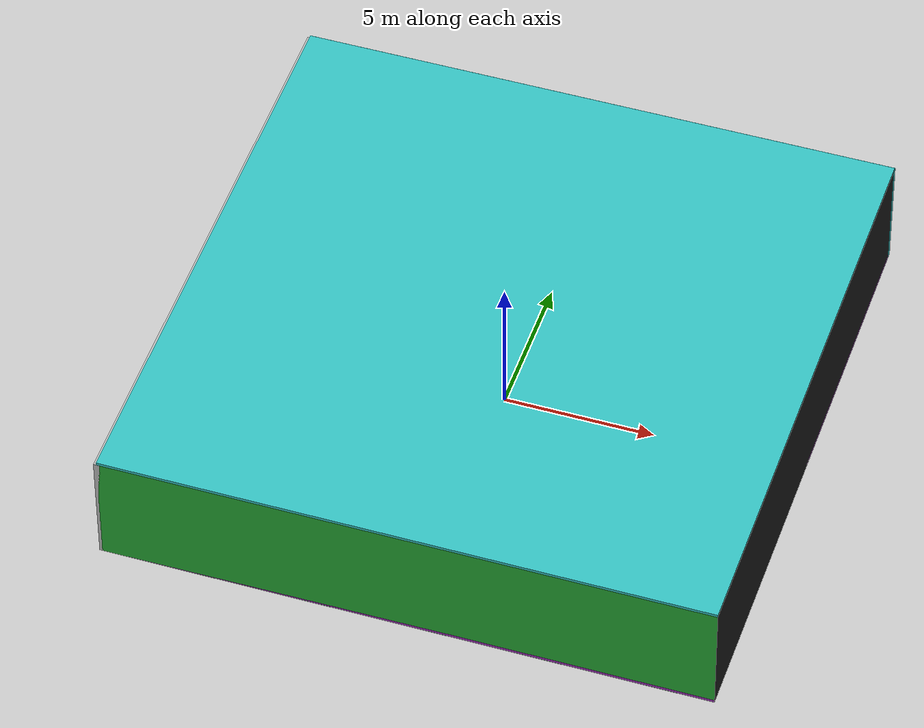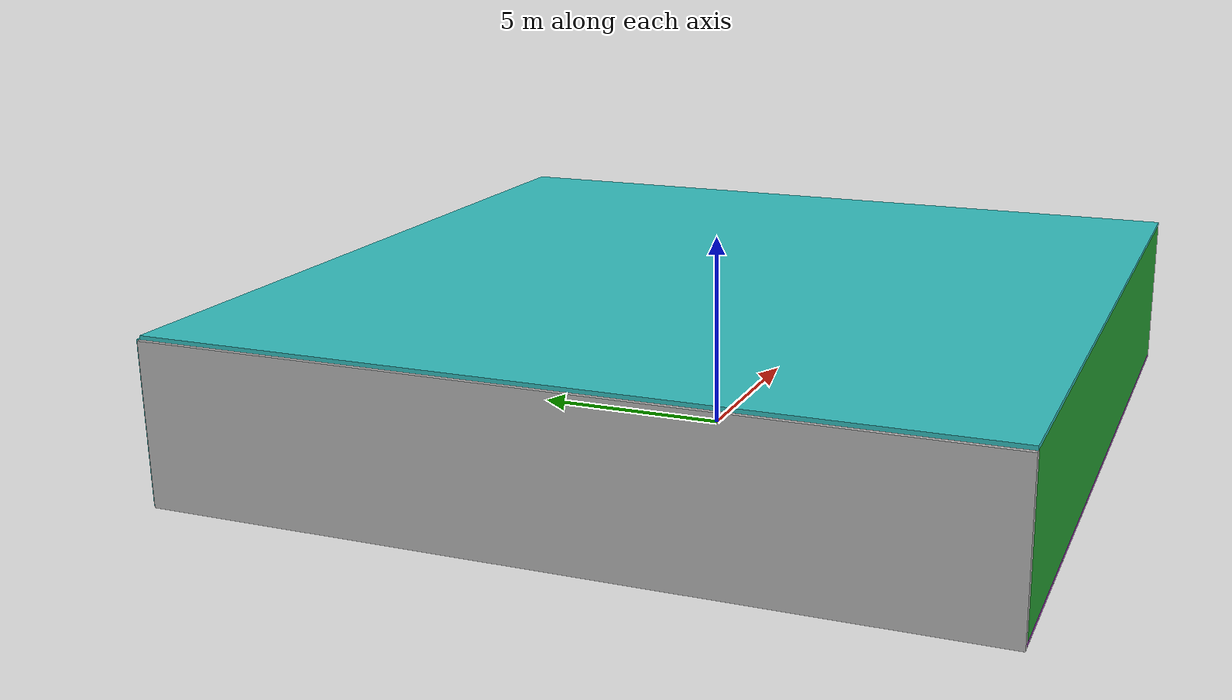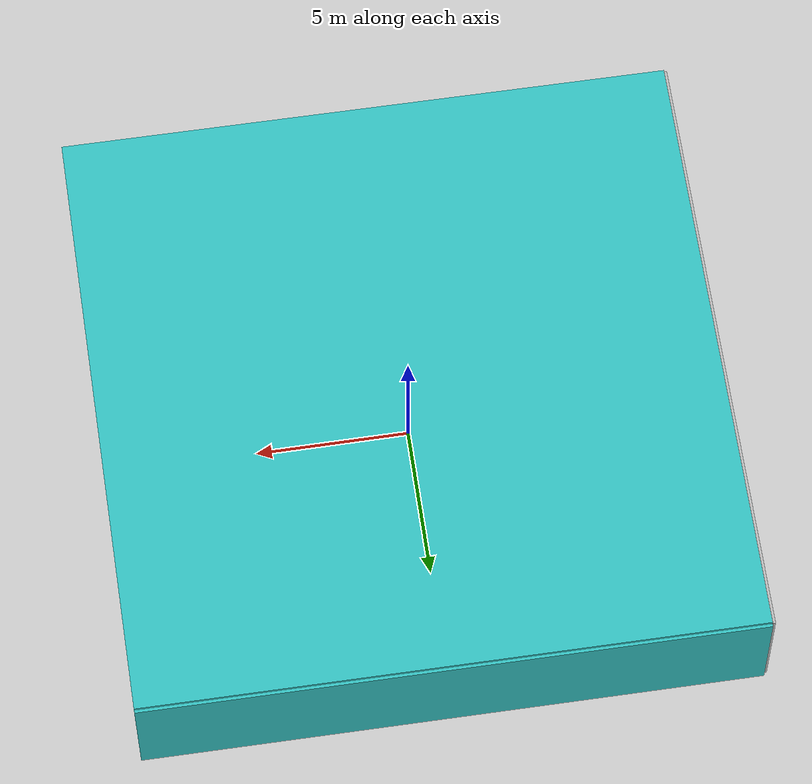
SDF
<sdf version="1.4">
 <world name="default">
  <physics type="ode">
   <max_step_size>0.001</max_step_size>
   <real_time_factor>1</real_time_factor>
   <real_time_update_rate>1000</real_time_update_rate>
   <gravity>0 0 -9.8</gravity>
  </physics>
  <scene><ambient>0.4 0.4 0.4 1</ambient><background>0.7 0.7 0.7 1</background><shadows>1</shadows></scene>
  <model name="Surrounding">
   <static>1</static>
   <link name="Ceiling">
    <collision name="Ceiling_Collision"><geometry><box><size>20 20 0.1</size></box></geometry></collision>
    <visual name="Ceiling_Visual">
     <geometry><box><size>20 20 0.1</size></box></geometry>
     <material>
      <script>
       <uri>file://media/materials/scripts/gazebo.material</uri>
       <name>Gazebo/TurquoiseGlowOutline</name>
      </script>
     </material>
    </visual>
    <pose>0 0 4.05 0 0 0</pose>
   </link>
   <link name="Wall_South">
    <collision name="Wall_South_Collision">
     <geometry><box><size>20 0 4</size></box></geometry>
     <pose>0 0 2 0 -0 0</pose>
    </collision>
    <visual name="Wall_South_Visual">
     <pose>0 0 2 0 -0 0</pose>
     <geometry><box><size>20 0 4</size></box></geometry>
     <material>
      <script><uri>file://media/materials/scripts/gazebo.material</uri><name>Gazebo/GreenGlow</name></script>
     </material>
    </visual>
    <velocity_decay><linear>0</linear><angular>0</angular></velocity_decay>
    <pose>0 -10 0 0 -0 0</pose>
   </link>
   <link name="Wall_East">
    <collision name="Wall_21_Collision">
     <geometry><box><size>20 0 4</size></box></geometry>
     <pose>0 0 2 0 -0 0</pose>
    </collision>
    <visual name="Wall_21_Visual">
     <pose>0 0 2 0 -0 0</pose>
     <geometry><box><size>20 0 4</size></box></geometry>
     <material>
      <script><uri>file://media/materials/scripts/gazebo.material</uri><name>Gazebo/FlatBlack</name></script>
     </material>
    </visual>
    <velocity_decay><linear>0</linear><angular>0</angular></velocity_decay>
    <pose>10 0 0 0 -0 1.5708</pose>
   </link>
   <link name="Wall_North">
    <collision name="Wall_22_Collision">
     <geometry><box><size>20 0.2 4</size></box></geometry>
     <pose>0 0 2 0 -0 0</pose>
    </collision>
    <visual name="Wall_22_Visual">
     <pose>0 0 2 0 -0 0</pose>
     <geometry><box><size>20 0.2 4</size></box></geometry>
     <material>
      <script><uri>file://media/materials/scripts/gazebo.material</uri><name>Gazebo/Turquoise</name></script>
     </material>
    </visual>
    <velocity_decay><linear>0</linear><angular>0</angular></velocity_decay>
    <pose>0 10 0 0 -0 0</pose>
   </link>
   <link name="Wall_West">
    <collision name="Wall_23_Collision">
     <geometry><box><size>20 0.2 4</size></box></geometry>
     <pose>0 0 2 0 -0 0</pose>
    </collision>
    <visual name="Wall_23_Visual">
     <pose>0 0 2 0 -0 0</pose>
     <geometry><box><size>20 0.2 4</size></box></geometry>
     <material>
      <script><uri>file://media/materials/scripts/gazebo.material</uri><name>Gazebo/LightOff</name></script>
     </material>
    </visual>
    <velocity_decay><linear>0</linear><angular>0</angular></velocity_decay>
    <pose>-10 0 0 0 0 -1.5708</pose>
   </link>
   <link name="Ground_link">
    <collision name="collision">
     <pose>0 0 .05 0 -0 0</pose>
     <geometry><box><size>20 20 0.1</size></box></geometry>
    </collision>
    <visual name="visual">
     <pose>0 0 .05 0 -0 0</pose>
     <geometry><box><size>20 20 0.1</size></box></geometry>
     <material>
      <script><uri>file://media/materials/scripts/gazebo.material</uri><name>Gazebo/PurpleGlow</name></script>
     </material>
    </visual>
   </link>
   <static>1</static>
  </model>
  <spherical_coordinates>
   <surface_model>EARTH_WGS84</surface_model>
   <latitude_deg>0</latitude_deg>
   <longitude_deg>0</longitude_deg>
   <elevation>0</elevation>
   <heading_deg>0</heading_deg>
  </spherical_coordinates>
  <light name="lightball_0" type="diffuse">
   <diffuse>0.8 0.8 0.8 1</diffuse>
   <specular>0.2 0.2 0.2 1</specular>
   <attenuation>
    <range>100</range>
    <constant>0.7</constant>
    <linear>0.01</linear>
    <quadratic>0.001</quadratic>
   </attenuation>
   <direction>-0.5 0.1 -0.9</direction>
   <pose>1.90103704013 7.54781885934 1.66482847381 0 0 0</pose>
  </light>
  <light name="lightball_1" type="diffuse">
   <diffuse>0.8 0.8 0.8 1</diffuse>
   <specular>0.2 0.2 0.2 1</specular>
   <attenuation>
    <range>100</range>
    <constant>0.7</constant>
    <linear>0.01</linear>
    <quadratic>0.001</quadratic>
   </attenuation>
   <direction>-0.5 0.1 -0.9</direction>
   <pose>6.87882114827 7.08842347916 3.09734188836 0 0 0</pose>
  </light>
  <light name="lightball_2" type="diffuse">
   <diffuse>0.8 0.8 0.8 1</diffuse>
   <specular>0.2 0.2 0.2 1</specular>
   <attenuation>
    <range>100</range>
    <constant>0.7</constant>
    <linear>0.01</linear>
    <quadratic>0.001</quadratic>
   </attenuation>
   <direction>-0.5 0.1 -0.9</direction>
   <pose>-2.23917130545 4.37658026587 3.50692618773 0 0 0</pose>
  </light>
  <include><uri>model://cabinet</uri><pose>-7.89992698196 8.16791688651 0 0 0 0.86675236528</pose></include>
  <include>
   <uri>model://robocup_3Dsim_goal</uri>
   <pose>-4.78374681102 -3.79383793096 0 0 0 1.09180852898</pose>
  </include>
  <include><uri>model://cabinet</uri><pose>-4.5747576424 4.06404730878 0 0 0 2.9811976818</pose></include>
  <include><uri>model://table</uri><pose>-5.03123110011 8.0151134985 0 0 0 2.29399063451</pose></include>
  <include><uri>model://cabinet</uri><pose>1.01252102729 -3.77194934224 0 0 0 2.3447160449</pose></include>
  <include>
   <uri>model://textured_shapes</uri>
   <pose>1.97011201787 -2.20166088025 0 0 0 0.618370428832</pose>
  </include>
  <include><uri>model://table</uri><pose>3.79063480382 -3.76233593362 0 0 0 1.71317569654</pose></include>
  <include>
   <uri>model://robocup_3Dsim_goal</uri>
   <pose>8.20298486974 -7.45292717792 0 0 0 0.648551966802</pose>
  </include>
  <include>
   <uri>model://robocup_3Dsim_goal</uri>
   <pose>7.10035110802 -4.19771569525 0 0 0 2.64640250139</pose>
  </include>
 </world>
</sdf>

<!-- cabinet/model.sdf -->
<sdf version="1.5">
  <model name="cabinet">
    <static>true</static>
    <link name="cabinet_bottom_plate">
      <inertial>
        <pose>0 0 -1 0 0 0</pose>
        <inertia>
          <ixx>2.050000</ixx>
          <ixy>0</ixy>
          <ixz>0</ixz>
          <iyy>2.050000</iyy>
          <iyz>0</iyz>
          <izz>2.050000</izz>
        </inertia>
        <mass>25.000000</mass>
      </inertial>
      <collision name="cabinet_bottom_plate_geom">
        <pose>0 0 0.010000 0 0 0</pose>
        <geometry>
          <box>
            <size>0.450000 0.450000 0.020000</size>
          </box>
        </geometry>
      </collision>
      <visual name="cabinet_bottom_plate_geom_visual">
        <pose>0 0 0.010000 0 0 0</pose>
        <geometry>
          <box>
            <size>0.450000 0.450000 0.020000</size>
          </box>
        </geometry>
        <material>
          <script>
            <uri>model://media/materials/scripts/gazebo.material</uri>
            <name>Gazebo/Wood</name>
          </script>
        </material>
      </visual>
      <collision name="cabinet_bottom_plate_geom_cabinet_back_plate">
        <pose>0.235000 0 0.510000 0 0 0</pose>
        <geometry>
          <box>
            <size>0.020000 0.450000 1.020000</size>
          </box>
        </geometry>
      </collision>
      <visual name="cabinet_bottom_plate_geom_cabinet_back_plate_visual">
        <pose>0.235000 0 0.510000 0 0 0</pose>
        <geometry>
          <box>
            <size>0.020000 0.450000 1.020000</size>
          </box>
        </geometry>
        <material>
          <script>
            <uri>model://media/materials/scripts/gazebo.material</uri>
            <name>Gazebo/Wood</name>
          </script>
        </material>
      </visual>
      <collision name="cabinet_bottom_plate_geom_cabinet_left_plate">
        <pose>0 0.235000 0.510000 0 0 0</pose>
        <geometry>
          <box>
            <size>0.450000 0.020000 1.020000</size>
          </box>
        </geometry>
      </collision>
      <visual name="cabinet_bottom_plate_geom_cabinet_left_plate_visual">
        <pose>0 0.235000 0.510000 0 0 0</pose>
        <geometry>
          <box>
            <size>0.450000 0.020000 1.020000</size>
          </box>
        </geometry>
        <material>
          <script>
            <uri>model://media/materials/scripts/gazebo.material</uri>
            <name>Gazebo/Wood</name>
          </script>
        </material>
      </visual>
      <collision name="cabinet_bottom_plate_geom_cabinet_middle_plate">
        <pose>0 0 0.510000 0 0 0</pose>
        <geometry>
          <box>
            <size>0.450000 0.450000 0.020000</size>
          </box>
        </geometry>
      </collision>
      <visual name="cabinet_bottom_plate_geom_cabinet_middle_plate_visual">
        <pose>0 0 0.510000 0 0 0</pose>
        <geometry>
          <box>
            <size>0.450000 0.450000 0.020000</size>
          </box>
        </geometry>
        <material>
          <script>
            <uri>model://media/materials/scripts/gazebo.material</uri>
            <name>Gazebo/Wood</name>
          </script>
        </material>
      </visual>
      <collision name="cabinet_bottom_plate_geom_cabinet_right_plate">
        <pose>0 -0.235000 0.510000 0 0 0</pose>
        <geometry>
          <box>
            <size>0.450000 0.020000 1.020000</size>
          </box>
        </geometry>
      </collision>
      <visual name="cabinet_bottom_plate_geom_cabinet_right_plate_visual">
        <pose>0 -0.235000 0.510000 0 0 0</pose>
        <geometry>
          <box>
            <size>0.450000 0.020000 1.020000</size>
          </box>
        </geometry>
        <material>
          <script>
            <uri>model://media/materials/scripts/gazebo.material</uri>
            <name>Gazebo/Wood</name>
          </script>
        </material>
      </visual>
      <collision name="cabinet_bottom_plate_geom_cabinet_top_plate">
        <pose>0 0 1.010000 0 0 0</pose>
        <geometry>
          <box>
            <size>0.450000 0.450000 0.020000</size>
          </box>
        </geometry>
      </collision>
      <visual name="cabinet_bottom_plate_geom_cabinet_top_plate_visual">
        <pose>0 0 1.010000 0 0 0</pose>
        <geometry>
          <box>
            <size>0.450000 0.450000 0.020000</size>
          </box>
        </geometry>
        <material>
          <script>
            <uri>model://media/materials/scripts/gazebo.material</uri>
            <name>Gazebo/Wood</name>
          </script>
        </material>
      </visual>
    </link>
  </model>
</sdf>

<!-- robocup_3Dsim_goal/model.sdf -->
<sdf version="1.5">
  <model name="robocup_3d_goal">
    <static>true</static>
    <link name="left_post">
      <pose>0 1.05 0.45 0 0 0</pose>
      <collision name="collision">
        <geometry>
          <cylinder>
            <radius>0.05</radius>
            <length>0.9</length>
          </cylinder>
        </geometry>
      </collision>
      <visual name="visual">
        <geometry>
          <cylinder>
            <radius>0.05</radius>
            <length>0.9</length>
          </cylinder>
        </geometry>
        <material>
          <script>
            <uri>file://media/materials/scripts/gazebo.material</uri>
            <name>Gazebo/ZincYellow</name>
          </script>
        </material>
      </visual>
    </link>
    <link name="left_support_horiz_lower">
      <pose>0.30 1.05 0.01 0 0 0</pose>
      <collision name="collision">
        <geometry>
          <box>
            <size>0.50 0.02 0.02</size>
          </box>
        </geometry>
      </collision>
      <visual name="visual">
        <geometry>
          <box>
            <size>0.50 0.02 0.02</size>
          </box>
        </geometry>
        <material>
          <script>
            <uri>file://media/materials/scripts/gazebo.material</uri>
            <name>Gazebo/White</name>
          </script>
        </material>
      </visual>
    </link>
    <link name="left_support_horiz_upper">
      <pose>0.30 1.05 0.79 0 0 0</pose>
      <collision name="collision">
        <geometry>
          <box>
            <size>0.50 0.02 0.02</size>
          </box>
        </geometry>
      </collision>
      <visual name="visual">
        <geometry>
          <box>
            <size>0.50 0.02 0.02</size>
          </box>
        </geometry>
        <material>
          <script>
            <uri>file://media/materials/scripts/gazebo.material</uri>
            <name>Gazebo/White</name>
          </script>
        </material>
      </visual>
    </link>
    <link name="left_support_vertical">
      <pose>0.56 1.05 0.4 0 1.5708 0</pose>
      <collision name="collision">
        <geometry>
          <box>
            <size>0.80 0.02 0.02</size>
          </box>
        </geometry>
      </collision>
      <visual name="visual">
        <geometry>
          <box>
            <size>0.80 0.02 0.02</size>
          </box>
        </geometry>
        <material>
          <script>
            <uri>file://media/materials/scripts/gazebo.material</uri>
            <name>Gazebo/White</name>
          </script>
        </material>
      </visual>
    </link>
    <link name="right_support_horiz_lower">
      <pose>0.30 -1.05 0.01 0 0 0</pose>
      <collision name="collision">
        <geometry>
          <box>
            <size>0.50 0.02 0.02</size>
          </box>
        </geometry>
      </collision>
      <visual name="visual">
        <geometry>
          <box>
            <size>0.50 0.02 0.02</size>
          </box>
        </geometry>
        <material>
          <script>
            <uri>file://media/materials/scripts/gazebo.material</uri>
            <name>Gazebo/White</name>
          </script>
        </material>
      </visual>
    </link>
    <link name="right_support_horiz_upper">
      <pose>0.30 -1.05 0.79 0 0 0</pose>
      <collision name="collision">
        <geometry>
          <box>
            <size>0.50 0.02 0.02</size>
          </box>
        </geometry>
      </collision>
      <visual name="visual">
        <geometry>
          <box>
            <size>0.50 0.02 0.02</size>
          </box>
        </geometry>
        <material>
          <script>
            <uri>file://media/materials/scripts/gazebo.material</uri>
            <name>Gazebo/White</name>
          </script>
        </material>
      </visual>
    </link>
    <link name="right_support_vertical">
      <pose>0.56 -1.05 0.4 0 1.5708 0</pose>
      <collision name="collision">
        <geometry>
          <box>
            <size>0.80 0.02 0.02</size>
          </box>
        </geometry>
      </collision>
      <visual name="visual">
        <geometry>
          <box>
            <size>0.80 0.02 0.02</size>
          </box>
        </geometry>
        <material>
          <script>
            <uri>file://media/materials/scripts/gazebo.material</uri>
            <name>Gazebo/White</name>
          </script>
        </material>
      </visual>
    </link>
    <link name="center_support_horiz_lower">
      <pose>0.56 0 0.01 0 1.5708 0</pose>
      <collision name="collision">
        <geometry>
          <box>
            <size>0.02 2.08 0.02</size>
          </box>
        </geometry>
      </collision>
      <visual name="visual">
        <geometry>
          <box>
            <size>0.02 2.08 0.02</size>
          </box>
        </geometry>
        <material>
          <script>
            <uri>file://media/materials/scripts/gazebo.material</uri>
            <name>Gazebo/White</name>
          </script>
        </material>
      </visual>
    </link>
    <link name="center_support_horiz_upper">
      <pose>0.56 0 0.79 0 1.5708 0</pose>
      <collision name="collision">
        <geometry>
          <box>
            <size>0.02 2.08 0.02</size>
          </box>
        </geometry>
      </collision>
      <visual name="visual">
        <geometry>
          <box>
            <size>0.02 2.08 0.02</size>
          </box>
        </geometry>
        <material>
          <script>
            <uri>file://media/materials/scripts/gazebo.material</uri>
            <name>Gazebo/White</name>
          </script>
        </material>
      </visual>
    </link>
    <link name="right_post">
      <pose>0 -1.05 0.45 0 0 0</pose>
      <collision name="collision">
        <geometry>
          <cylinder>
            <radius>0.05</radius>
            <length>0.9</length>
          </cylinder>
        </geometry>
      </collision>
      <visual name="visual">
        <geometry>
          <cylinder>
            <radius>0.05</radius>
            <length>0.9</length>
          </cylinder>
        </geometry>
        <material>
          <script>
            <uri>file://media/materials/scripts/gazebo.material</uri>
            <name>Gazebo/ZincYellow</name>
          </script>
        </material>
      </visual>
    </link>
    <link name="crossbar">
      <pose>0 0 0.85 1.57 1.57 0</pose>
      <collision name="collision">
        <geometry>
          <cylinder>
            <radius>0.05</radius>
            <length>2.0</length>
          </cylinder>
        </geometry>
      </collision>
      <visual name="visual">
        <geometry>
          <cylinder>
            <radius>0.05</radius>
            <length>2.0</length>
          </cylinder>
        </geometry>
        <material>
          <script>
            <uri>file://media/materials/scripts/gazebo.material</uri>
            <name>Gazebo/ZincYellow</name>
          </script>
        </material>
      </visual>
    </link>
    <link name="center_net">
      <pose>0.56 0 0.40 0 0 0</pose>
      <collision name="collision">
        <geometry>
          <box>
            <size>0.01 2.1 0.80</size>
          </box>
        </geometry>
      </collision>
      <visual name="visual">
        <geometry>
          <box>
            <size>0.01 2.1 0.80</size>
          </box>
        </geometry>
        <material>
          <script>
            <uri>model://../model_source/models/robocup09_spl_field/materials/scripts/</uri>
            <uri>model://../model_source/models/robocup09_spl_field/materials/textures/</uri>
            <name>RoboCup/Net</name>
          </script>
        </material>
      </visual>
    </link>
    <link name="left_net">
      <pose>0.30 1.05 0.40 0 0 0</pose>
      <collision name="collision">
        <geometry>
          <box>
            <size>0.50 0.01 0.76</size>
          </box>
        </geometry>
      </collision>
      <visual name="visual">
        <geometry>
          <box>
            <size>0.50 0.01 0.76</size>
          </box>
        </geometry>
        <material>
          <script>
            <uri>model://../model_source/models/robocup09_spl_field/materials/scripts/</uri>
            <uri>model://../model_source/models/robocup09_spl_field/materials/textures/</uri>
            <name>RoboCup/Net</name>
          </script>
        </material>
      </visual>
    </link>
    <link name="right_net">
      <pose>0.30 -1.05 0.40 0 0 0</pose>
      <collision name="collision">
        <geometry>
          <box>
            <size>0.50 0.01 0.76</size>
          </box>
        </geometry>
      </collision>
      <visual name="visual">
        <geometry>
          <box>
            <size>0.50 0.01 0.76</size>
          </box>
        </geometry>
        <material>
          <script>
            <uri>model://../model_source/models/robocup09_spl_field/materials/scripts/</uri>
            <uri>model://../model_source/models/robocup09_spl_field/materials/textures/</uri>
            <name>RoboCup/Net</name>
          </script>
        </material>
      </visual>
    </link>
  </model>
</sdf>

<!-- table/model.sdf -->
<sdf version="1.5">
  <model name="table">
    <static>true</static>
    <link name="link">
      <collision name="surface">
        <pose>0 0 1.0 0 0 0</pose>
        <geometry>
          <box>
            <size>1.5 0.8 0.03</size>
          </box>
        </geometry>
        <surface>
          <friction>
            <ode>
              <mu>0.6</mu>
              <mu2>0.6</mu2>
            </ode>
          </friction>
        </surface>
      </collision>
      <visual name="visual1">
        <pose>0 0 1.0 0 0 0</pose>
        <geometry>
          <box>
            <size>1.5 0.8 0.03</size>
          </box>
        </geometry>
        <material>
          <script>
            <uri>model://media/materials/scripts/gazebo.material</uri>
            <name>Gazebo/Wood</name>
          </script>
        </material>
      </visual>
      <collision name="front_left_leg">
        <pose>0.68 0.38 0.5 0 0 0</pose>
        <geometry>
          <cylinder>
            <radius>0.02</radius>
            <length>1.0</length>
          </cylinder>
        </geometry>
      </collision>
      <visual name="front_left_leg">
        <pose>0.68 0.38 0.5 0 0 0</pose>
        <geometry>
          <cylinder>
            <radius>0.02</radius>
            <length>1.0</length>
          </cylinder>
        </geometry>
        <material>
          <script>
            <uri>model://media/materials/scripts/gazebo.material</uri>
            <name>Gazebo/Grey</name>
          </script>
        </material>
      </visual>
      <collision name="front_right_leg">
        <pose>0.68 -0.38 0.5 0 0 0</pose>
        <geometry>
          <cylinder>
            <radius>0.02</radius>
            <length>1.0</length>
          </cylinder>
        </geometry>
      </collision>
      <visual name="front_right_leg">
        <pose>0.68 -0.38 0.5 0 0 0</pose>
        <geometry>
          <cylinder>
            <radius>0.02</radius>
            <length>1.0</length>
          </cylinder>
        </geometry>
        <material>
          <script>
            <uri>model://media/materials/scripts/gazebo.material</uri>
            <name>Gazebo/Grey</name>
          </script>
        </material>
      </visual>
      <collision name="back_right_leg">
        <pose>-0.68 -0.38 0.5 0 0 0</pose>
        <geometry>
          <cylinder>
            <radius>0.02</radius>
            <length>1.0</length>
          </cylinder>
        </geometry>
      </collision>
      <visual name="back_right_leg">
        <pose>-0.68 -0.38 0.5 0 0 0</pose>
        <geometry>
          <cylinder>
            <radius>0.02</radius>
            <length>1.0</length>
          </cylinder>
        </geometry>
        <material>
          <script>
            <uri>model://media/materials/scripts/gazebo.material</uri>
            <name>Gazebo/Grey</name>
          </script>
        </material>
      </visual>
      <collision name="back_left_leg">
        <pose>-0.68 0.38 0.5 0 0 0</pose>
        <geometry>
          <cylinder>
            <radius>0.02</radius>
            <length>1.0</length>
          </cylinder>
        </geometry>
      </collision>
      <visual name="back_left_leg">
        <pose>-0.68 0.38 0.5 0 0 0</pose>
        <geometry>
          <cylinder>
            <radius>0.02</radius>
            <length>1.0</length>
          </cylinder>
        </geometry>
        <material>
          <script>
            <uri>model://media/materials/scripts/gazebo.material</uri>
            <name>Gazebo/Grey</name>
          </script>
        </material>
      </visual>
    </link>
  </model>
</sdf>

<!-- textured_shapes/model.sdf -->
<sdf version="1.6">
  <model name="textured_shapes">
    <pose>0 0 0.5 0 0 0</pose>
    <link name="box">
      <pose>0 -1.5 0 0 0 0</pose>
      <collision name="collision">
        <geometry>
          <box>
            <size>1 1 1</size>
          </box>
        </geometry>
      </collision>
      <visual name="visual">
        <geometry>
          <box>
            <size>1 1 1</size>
          </box>
        </geometry>
        <material>
          <script>
            <uri>model://../model_source/models/textured_shapes/materials/scripts</uri>
            <uri>model://../model_source/models/textured_shapes/materials/textures</uri>
            <name>TexturedShape/Squares</name>
          </script>
        </material>
      </visual>
    </link>
    <link name="sphere">
      <collision name="collision">
        <geometry>
          <sphere>
            <radius>0.5</radius>
          </sphere>
        </geometry>
      </collision>
      <visual name="visual">
        <geometry>
          <sphere>
            <radius>0.5</radius>
          </sphere>
        </geometry>
        <material>
          <script>
            <uri>model://../model_source/models/textured_shapes/materials/scripts</uri>
            <uri>model://../model_source/models/textured_shapes/materials/textures</uri>
            <name>TexturedShape/Squares</name>
          </script>
        </material>
      </visual>
    </link>
    <link name="cylinder">
      <pose>0 1.5 0 0 0 0</pose>
      <collision name="collision">
        <geometry>
          <cylinder>
            <radius>0.5</radius>
            <length>1</length>
          </cylinder>
        </geometry>
      </collision>
      <visual name="visual">
        <geometry>
          <cylinder>
            <radius>0.5</radius>
            <length>1</length>
          </cylinder>
        </geometry>
        <material>
          <script>
            <uri>model://../model_source/models/textured_shapes/materials/scripts</uri>
            <uri>model://../model_source/models/textured_shapes/materials/textures</uri>
            <name>TexturedShape/Squares</name>
          </script>
        </material>
      </visual>
    </link>
  </model>
</sdf>
